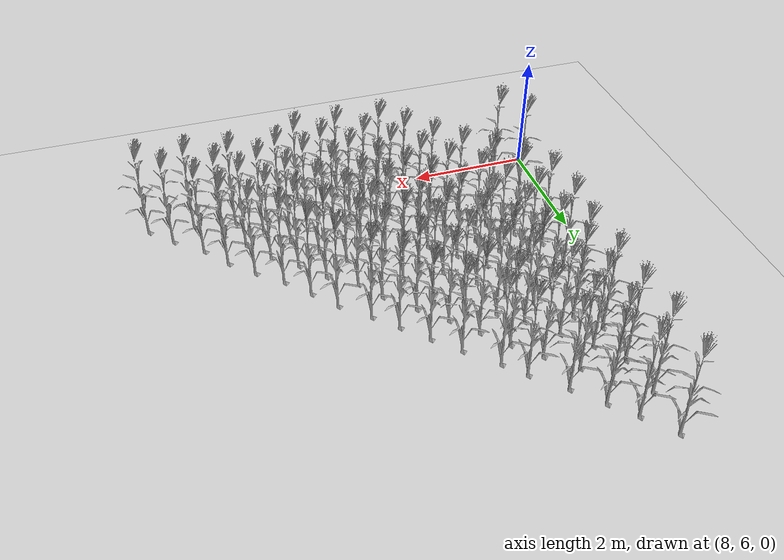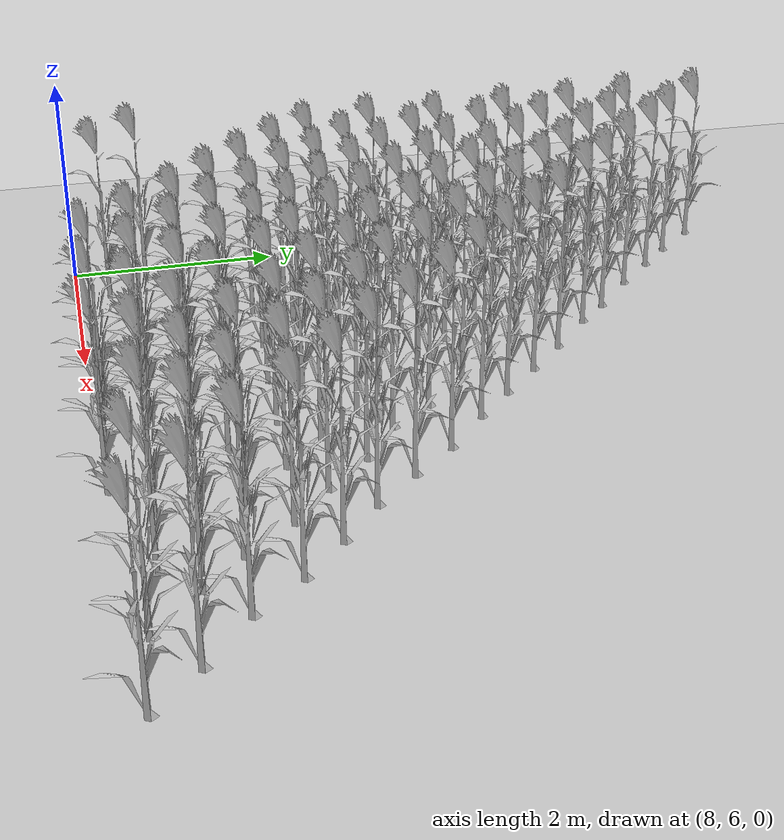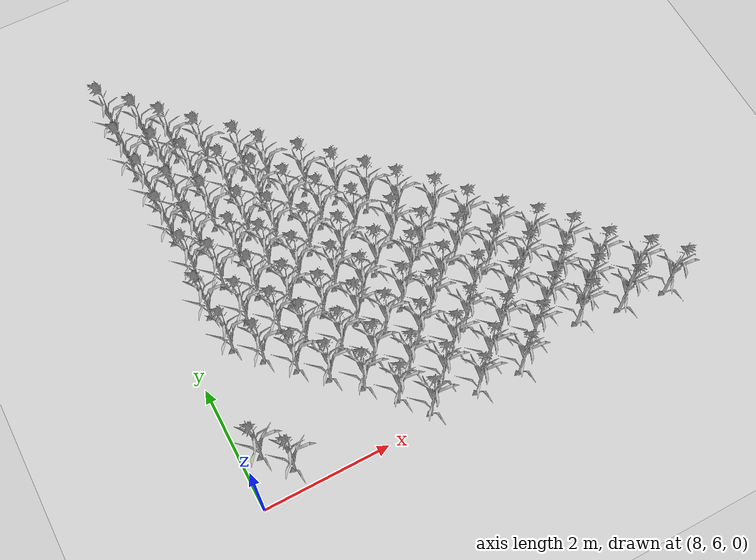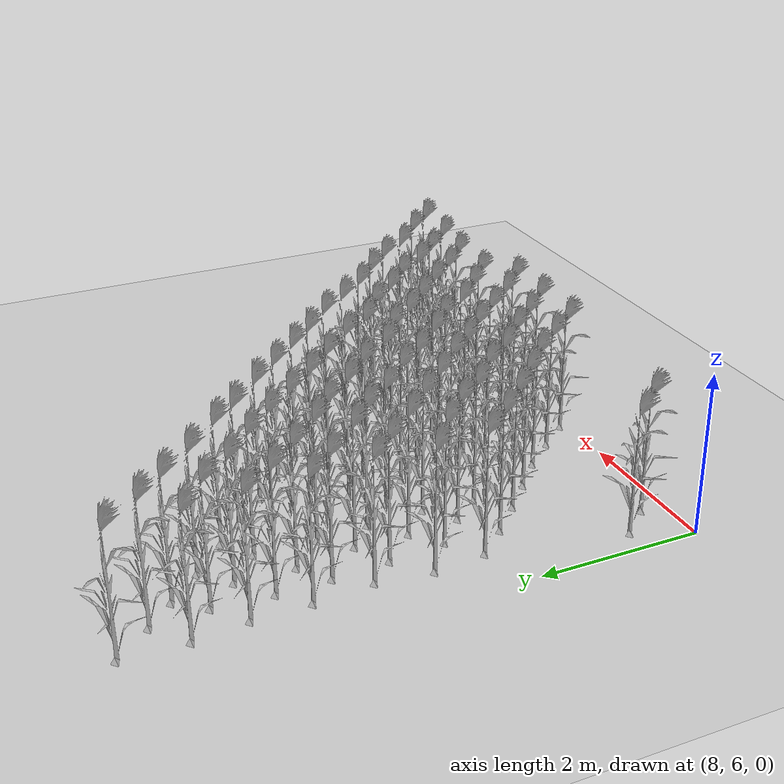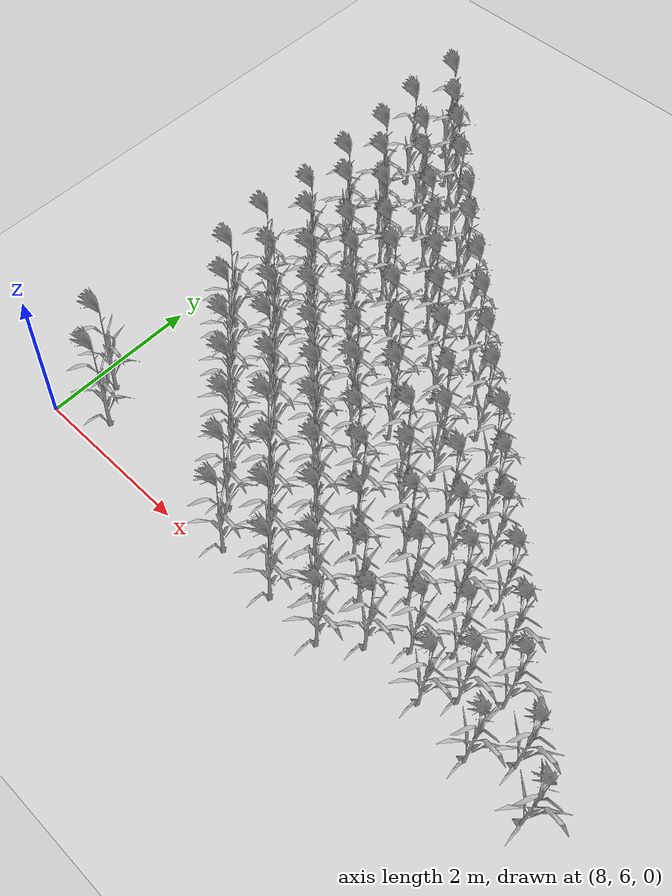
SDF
<sdf version="1.7">
 <world name="farmland_world">
  <model name="ground_plane">
   <static>1</static>
   <link name="link">
    <collision name="collision">
     <geometry><plane><normal>0 0 1</normal><size>40.0 40.0</size></plane></geometry>
     <surface><friction><ode><mu>100</mu><mu2>50</mu2></ode></friction></surface>
    </collision>
    <visual name="visual">
     <cast_shadows>0</cast_shadows>
     <geometry><plane><normal>0 0 1</normal><size>40.0 40.0</size></plane></geometry>
     <material>
      <script><uri>file://media/materials/scripts/gazebo.material</uri><name>Gazebo/Grey</name></script>
     </material>
    </visual>
   </link>
  </model>
  <model name="tree_3_576">
   <static>1</static>
   <link name="link">
    <collision name="collision">
     <geometry><mesh><uri>model://Corn_low_poly/corn.obj</uri><scale>1 1 1</scale></mesh></geometry>
     <surface><friction><ode><mu>100</mu><mu2>50</mu2></ode></friction></surface>
    </collision>
    <visual name="visual">
     <geometry><mesh><uri>model://Corn_low_poly/corn.obj</uri><scale>1 1 1</scale></mesh></geometry>
    </visual>
   </link>
   <pose>8.64935351501129 6.3411634427248895 0 0 0 0</pose>
  </model>
  <model name="tree_3_577">
   <static>1</static>
   <link name="link">
    <collision name="collision">
     <geometry><mesh><uri>model://Corn_low_poly/corn.obj</uri><scale>1 1 1</scale></mesh></geometry>
     <surface><friction><ode><mu>100</mu><mu2>50</mu2></ode></friction></surface>
    </collision>
    <visual name="visual">
     <geometry><mesh><uri>model://Corn_low_poly/corn.obj</uri><scale>1 1 1</scale></mesh></geometry>
    </visual>
   </link>
   <pose>8.30858917696627 6.719809609260198 0 0 0 0</pose>
  </model>
  <model name="tree_3_626">
   <static>1</static>
   <link name="link">
    <collision name="collision">
     <geometry><mesh><uri>model://Corn_low_poly/corn.obj</uri><scale>1 1 1</scale></mesh></geometry>
     <surface><friction><ode><mu>100</mu><mu2>50</mu2></ode></friction></surface>
    </collision>
    <visual name="visual">
     <geometry><mesh><uri>model://Corn_low_poly/corn.obj</uri><scale>1 1 1</scale></mesh></geometry>
    </visual>
   </link>
   <pose>10.777312497413048 6.151273396415218 0 0 0 0</pose>
  </model>
  <model name="tree_3_627">
   <static>1</static>
   <link name="link">
    <collision name="collision">
     <geometry><mesh><uri>model://Corn_low_poly/corn.obj</uri><scale>1 1 1</scale></mesh></geometry>
     <surface><friction><ode><mu>100</mu><mu2>50</mu2></ode></friction></surface>
    </collision>
    <visual name="visual">
     <geometry><mesh><uri>model://Corn_low_poly/corn.obj</uri><scale>1 1 1</scale></mesh></geometry>
    </visual>
   </link>
   <pose>10.451371682672354 6.546429637613833 0 0 0 0</pose>
  </model>
  <model name="tree_3_628">
   <static>1</static>
   <link name="link">
    <collision name="collision">
     <geometry><mesh><uri>model://Corn_low_poly/corn.obj</uri><scale>1 1 1</scale></mesh></geometry>
     <surface><friction><ode><mu>100</mu><mu2>50</mu2></ode></friction></surface>
    </collision>
    <visual name="visual">
     <geometry><mesh><uri>model://Corn_low_poly/corn.obj</uri><scale>1 1 1</scale></mesh></geometry>
    </visual>
   </link>
   <pose>10.093860684443943 6.951738333499843 0 0 0 0</pose>
  </model>
  <model name="tree_3_629">
   <static>1</static>
   <link name="link">
    <collision name="collision">
     <geometry><mesh><uri>model://Corn_low_poly/corn.obj</uri><scale>1 1 1</scale></mesh></geometry>
     <surface><friction><ode><mu>100</mu><mu2>50</mu2></ode></friction></surface>
    </collision>
    <visual name="visual">
     <geometry><mesh><uri>model://Corn_low_poly/corn.obj</uri><scale>1 1 1</scale></mesh></geometry>
    </visual>
   </link>
   <pose>9.712641433063979 7.302922568412573 0 0 0 0</pose>
  </model>
  <model name="tree_3_630">
   <static>1</static>
   <link name="link">
    <collision name="collision">
     <geometry><mesh><uri>model://Corn_low_poly/corn.obj</uri><scale>1 1 1</scale></mesh></geometry>
     <surface><friction><ode><mu>100</mu><mu2>50</mu2></ode></friction></surface>
    </collision>
    <visual name="visual">
     <geometry><mesh><uri>model://Corn_low_poly/corn.obj</uri><scale>1 1 1</scale></mesh></geometry>
    </visual>
   </link>
   <pose>9.346207723671728 7.650097128878043 0 0 0 0</pose>
  </model>
  <model name="tree_3_631">
   <static>1</static>
   <link name="link">
    <collision name="collision">
     <geometry><mesh><uri>model://Corn_low_poly/corn.obj</uri><scale>1 1 1</scale></mesh></geometry>
     <surface><friction><ode><mu>100</mu><mu2>50</mu2></ode></friction></surface>
    </collision>
    <visual name="visual">
     <geometry><mesh><uri>model://Corn_low_poly/corn.obj</uri><scale>1 1 1</scale></mesh></geometry>
    </visual>
   </link>
   <pose>8.97669276516336 8.01858814713158 0 0 0 0</pose>
  </model>
  <model name="tree_3_632">
   <static>1</static>
   <link name="link">
    <collision name="collision">
     <geometry><mesh><uri>model://Corn_low_poly/corn.obj</uri><scale>1 1 1</scale></mesh></geometry>
     <surface><friction><ode><mu>100</mu><mu2>50</mu2></ode></friction></surface>
    </collision>
    <visual name="visual">
     <geometry><mesh><uri>model://Corn_low_poly/corn.obj</uri><scale>1 1 1</scale></mesh></geometry>
    </visual>
   </link>
   <pose>8.639726052530673 8.391008435942188 0 0 0 0</pose>
  </model>
  <model name="tree_3_669">
   <static>1</static>
   <link name="link">
    <collision name="collision">
     <geometry><mesh><uri>model://Corn_low_poly/corn.obj</uri><scale>1 1 1</scale></mesh></geometry>
     <surface><friction><ode><mu>100</mu><mu2>50</mu2></ode></friction></surface>
    </collision>
    <visual name="visual">
     <geometry><mesh><uri>model://Corn_low_poly/corn.obj</uri><scale>1 1 1</scale></mesh></geometry>
    </visual>
   </link>
   <pose>11.531357919146503 6.11878398449251 0 0 0 0</pose>
  </model>
  <model name="tree_3_670">
   <static>1</static>
   <link name="link">
    <collision name="collision">
     <geometry><mesh><uri>model://Corn_low_poly/corn.obj</uri><scale>1 1 1</scale></mesh></geometry>
     <surface><friction><ode><mu>100</mu><mu2>50</mu2></ode></friction></surface>
    </collision>
    <visual name="visual">
     <geometry><mesh><uri>model://Corn_low_poly/corn.obj</uri><scale>1 1 1</scale></mesh></geometry>
    </visual>
   </link>
   <pose>11.149569247908355 6.500995445497624 0 0 0 0</pose>
  </model>
  <model name="tree_3_671">
   <static>1</static>
   <link name="link">
    <collision name="collision">
     <geometry><mesh><uri>model://Corn_low_poly/corn.obj</uri><scale>1 1 1</scale></mesh></geometry>
     <surface><friction><ode><mu>100</mu><mu2>50</mu2></ode></friction></surface>
    </collision>
    <visual name="visual">
     <geometry><mesh><uri>model://Corn_low_poly/corn.obj</uri><scale>1 1 1</scale></mesh></geometry>
    </visual>
   </link>
   <pose>10.798563994182116 6.872297393704606 0 0 0 0</pose>
  </model>
  <model name="tree_3_672">
   <static>1</static>
   <link name="link">
    <collision name="collision">
     <geometry><mesh><uri>model://Corn_low_poly/corn.obj</uri><scale>1 1 1</scale></mesh></geometry>
     <surface><friction><ode><mu>100</mu><mu2>50</mu2></ode></friction></surface>
    </collision>
    <visual name="visual">
     <geometry><mesh><uri>model://Corn_low_poly/corn.obj</uri><scale>1 1 1</scale></mesh></geometry>
    </visual>
   </link>
   <pose>10.405516856475273 7.238317220630221 0 0 0 0</pose>
  </model>
  <model name="tree_3_673">
   <static>1</static>
   <link name="link">
    <collision name="collision">
     <geometry><mesh><uri>model://Corn_low_poly/corn.obj</uri><scale>1 1 1</scale></mesh></geometry>
     <surface><friction><ode><mu>100</mu><mu2>50</mu2></ode></friction></surface>
    </collision>
    <visual name="visual">
     <geometry><mesh><uri>model://Corn_low_poly/corn.obj</uri><scale>1 1 1</scale></mesh></geometry>
    </visual>
   </link>
   <pose>10.079204731842175 7.635146201267444 0 0 0 0</pose>
  </model>
  <model name="tree_3_674">
   <static>1</static>
   <link name="link">
    <collision name="collision">
     <geometry><mesh><uri>model://Corn_low_poly/corn.obj</uri><scale>1 1 1</scale></mesh></geometry>
     <surface><friction><ode><mu>100</mu><mu2>50</mu2></ode></friction></surface>
    </collision>
    <visual name="visual">
     <geometry><mesh><uri>model://Corn_low_poly/corn.obj</uri><scale>1 1 1</scale></mesh></geometry>
    </visual>
   </link>
   <pose>9.667571216341711 7.98980224917773 0 0 0 0</pose>
  </model>
  <model name="tree_3_675">
   <static>1</static>
   <link name="link">
    <collision name="collision">
     <geometry><mesh><uri>model://Corn_low_poly/corn.obj</uri><scale>1 1 1</scale></mesh></geometry>
     <surface><friction><ode><mu>100</mu><mu2>50</mu2></ode></friction></surface>
    </collision>
    <visual name="visual">
     <geometry><mesh><uri>model://Corn_low_poly/corn.obj</uri><scale>1 1 1</scale></mesh></geometry>
    </visual>
   </link>
   <pose>9.3916508105687 8.343451964459202 0 0 0 0</pose>
  </model>
  <model name="tree_3_676">
   <static>1</static>
   <link name="link">
    <collision name="collision">
     <geometry><mesh><uri>model://Corn_low_poly/corn.obj</uri><scale>1 1 1</scale></mesh></geometry>
     <surface><friction><ode><mu>100</mu><mu2>50</mu2></ode></friction></surface>
    </collision>
    <visual name="visual">
     <geometry><mesh><uri>model://Corn_low_poly/corn.obj</uri><scale>1 1 1</scale></mesh></geometry>
    </visual>
   </link>
   <pose>9.022405621127744 8.693508944047071 0 0 0 0</pose>
  </model>
  <model name="tree_3_677">
   <static>1</static>
   <link name="link">
    <collision name="collision">
     <geometry><mesh><uri>model://Corn_low_poly/corn.obj</uri><scale>1 1 1</scale></mesh></geometry>
     <surface><friction><ode><mu>100</mu><mu2>50</mu2></ode></friction></surface>
    </collision>
    <visual name="visual">
     <geometry><mesh><uri>model://Corn_low_poly/corn.obj</uri><scale>1 1 1</scale></mesh></geometry>
    </visual>
   </link>
   <pose>8.569687681751743 9.035859053482325 0 0 0 0</pose>
  </model>
  <model name="tree_3_711">
   <static>1</static>
   <link name="link">
    <collision name="collision">
     <geometry><mesh><uri>model://Corn_low_poly/corn.obj</uri><scale>1 1 1</scale></mesh></geometry>
     <surface><friction><ode><mu>100</mu><mu2>50</mu2></ode></friction></surface>
    </collision>
    <visual name="visual">
     <geometry><mesh><uri>model://Corn_low_poly/corn.obj</uri><scale>1 1 1</scale></mesh></geometry>
    </visual>
   </link>
   <pose>12.232217793601766 6.0938751144287 0 0 0 0</pose>
  </model>
  <model name="tree_3_712">
   <static>1</static>
   <link name="link">
    <collision name="collision">
     <geometry><mesh><uri>model://Corn_low_poly/corn.obj</uri><scale>1 1 1</scale></mesh></geometry>
     <surface><friction><ode><mu>100</mu><mu2>50</mu2></ode></friction></surface>
    </collision>
    <visual name="visual">
     <geometry><mesh><uri>model://Corn_low_poly/corn.obj</uri><scale>1 1 1</scale></mesh></geometry>
    </visual>
   </link>
   <pose>11.864001395743752 6.433082951747832 0 0 0 0</pose>
  </model>
  <model name="tree_3_713">
   <static>1</static>
   <link name="link">
    <collision name="collision">
     <geometry><mesh><uri>model://Corn_low_poly/corn.obj</uri><scale>1 1 1</scale></mesh></geometry>
     <surface><friction><ode><mu>100</mu><mu2>50</mu2></ode></friction></surface>
    </collision>
    <visual name="visual">
     <geometry><mesh><uri>model://Corn_low_poly/corn.obj</uri><scale>1 1 1</scale></mesh></geometry>
    </visual>
   </link>
   <pose>11.495573526553908 6.833603310860739 0 0 0 0</pose>
  </model>
  <model name="tree_3_714">
   <static>1</static>
   <link name="link">
    <collision name="collision">
     <geometry><mesh><uri>model://Corn_low_poly/corn.obj</uri><scale>1 1 1</scale></mesh></geometry>
     <surface><friction><ode><mu>100</mu><mu2>50</mu2></ode></friction></surface>
    </collision>
    <visual name="visual">
     <geometry><mesh><uri>model://Corn_low_poly/corn.obj</uri><scale>1 1 1</scale></mesh></geometry>
    </visual>
   </link>
   <pose>11.137292094341124 7.216066445743867 0 0 0 0</pose>
  </model>
  <model name="tree_3_715">
   <static>1</static>
   <link name="link">
    <collision name="collision">
     <geometry><mesh><uri>model://Corn_low_poly/corn.obj</uri><scale>1 1 1</scale></mesh></geometry>
     <surface><friction><ode><mu>100</mu><mu2>50</mu2></ode></friction></surface>
    </collision>
    <visual name="visual">
     <geometry><mesh><uri>model://Corn_low_poly/corn.obj</uri><scale>1 1 1</scale></mesh></geometry>
    </visual>
   </link>
   <pose>10.77471236538079 7.566790496071668 0 0 0 0</pose>
  </model>
  <model name="tree_3_716">
   <static>1</static>
   <link name="link">
    <collision name="collision">
     <geometry><mesh><uri>model://Corn_low_poly/corn.obj</uri><scale>1 1 1</scale></mesh></geometry>
     <surface><friction><ode><mu>100</mu><mu2>50</mu2></ode></friction></surface>
    </collision>
    <visual name="visual">
     <geometry><mesh><uri>model://Corn_low_poly/corn.obj</uri><scale>1 1 1</scale></mesh></geometry>
    </visual>
   </link>
   <pose>10.471685381819386 7.901711357518229 0 0 0 0</pose>
  </model>
  <model name="tree_3_717">
   <static>1</static>
   <link name="link">
    <collision name="collision">
     <geometry><mesh><uri>model://Corn_low_poly/corn.obj</uri><scale>1 1 1</scale></mesh></geometry>
     <surface><friction><ode><mu>100</mu><mu2>50</mu2></ode></friction></surface>
    </collision>
    <visual name="visual">
     <geometry><mesh><uri>model://Corn_low_poly/corn.obj</uri><scale>1 1 1</scale></mesh></geometry>
    </visual>
   </link>
   <pose>10.092727066470006 8.257640670322473 0 0 0 0</pose>
  </model>
  <model name="tree_3_718">
   <static>1</static>
   <link name="link">
    <collision name="collision">
     <geometry><mesh><uri>model://Corn_low_poly/corn.obj</uri><scale>1 1 1</scale></mesh></geometry>
     <surface><friction><ode><mu>100</mu><mu2>50</mu2></ode></friction></surface>
    </collision>
    <visual name="visual">
     <geometry><mesh><uri>model://Corn_low_poly/corn.obj</uri><scale>1 1 1</scale></mesh></geometry>
    </visual>
   </link>
   <pose>9.72286980934282 8.628847013309263 0 0 0 0</pose>
  </model>
  <model name="tree_3_719">
   <static>1</static>
   <link name="link">
    <collision name="collision">
     <geometry><mesh><uri>model://Corn_low_poly/corn.obj</uri><scale>1 1 1</scale></mesh></geometry>
     <surface><friction><ode><mu>100</mu><mu2>50</mu2></ode></friction></surface>
    </collision>
    <visual name="visual">
     <geometry><mesh><uri>model://Corn_low_poly/corn.obj</uri><scale>1 1 1</scale></mesh></geometry>
    </visual>
   </link>
   <pose>9.345481412307185 8.98576558102844 0 0 0 0</pose>
  </model>
  <model name="tree_3_720">
   <static>1</static>
   <link name="link">
    <collision name="collision">
     <geometry><mesh><uri>model://Corn_low_poly/corn.obj</uri><scale>1 1 1</scale></mesh></geometry>
     <surface><friction><ode><mu>100</mu><mu2>50</mu2></ode></friction></surface>
    </collision>
    <visual name="visual">
     <geometry><mesh><uri>model://Corn_low_poly/corn.obj</uri><scale>1 1 1</scale></mesh></geometry>
    </visual>
   </link>
   <pose>8.953700819799026 9.396545710614987 0 0 0 0</pose>
  </model>
  <model name="tree_3_721">
   <static>1</static>
   <link name="link">
    <collision name="collision">
     <geometry><mesh><uri>model://Corn_low_poly/corn.obj</uri><scale>1 1 1</scale></mesh></geometry>
     <surface><friction><ode><mu>100</mu><mu2>50</mu2></ode></friction></surface>
    </collision>
    <visual name="visual">
     <geometry><mesh><uri>model://Corn_low_poly/corn.obj</uri><scale>1 1 1</scale></mesh></geometry>
    </visual>
   </link>
   <pose>8.65388605759905 9.705794200934703 0 0 0 0</pose>
  </model>
  <model name="tree_3_753">
   <static>1</static>
   <link name="link">
    <collision name="collision">
     <geometry><mesh><uri>model://Corn_low_poly/corn.obj</uri><scale>1 1 1</scale></mesh></geometry>
     <surface><friction><ode><mu>100</mu><mu2>50</mu2></ode></friction></surface>
    </collision>
    <visual name="visual">
     <geometry><mesh><uri>model://Corn_low_poly/corn.obj</uri><scale>1 1 1</scale></mesh></geometry>
    </visual>
   </link>
   <pose>12.613792174995002 6.412581238912322 0 0 0 0</pose>
  </model>
  <model name="tree_3_754">
   <static>1</static>
   <link name="link">
    <collision name="collision">
     <geometry><mesh><uri>model://Corn_low_poly/corn.obj</uri><scale>1 1 1</scale></mesh></geometry>
     <surface><friction><ode><mu>100</mu><mu2>50</mu2></ode></friction></surface>
    </collision>
    <visual name="visual">
     <geometry><mesh><uri>model://Corn_low_poly/corn.obj</uri><scale>1 1 1</scale></mesh></geometry>
    </visual>
   </link>
   <pose>12.230980644655714 6.732122366942741 0 0 0 0</pose>
  </model>
  <model name="tree_3_755">
   <static>1</static>
   <link name="link">
    <collision name="collision">
     <geometry><mesh><uri>model://Corn_low_poly/corn.obj</uri><scale>1 1 1</scale></mesh></geometry>
     <surface><friction><ode><mu>100</mu><mu2>50</mu2></ode></friction></surface>
    </collision>
    <visual name="visual">
     <geometry><mesh><uri>model://Corn_low_poly/corn.obj</uri><scale>1 1 1</scale></mesh></geometry>
    </visual>
   </link>
   <pose>11.845102816352751 7.073893054428224 0 0 0 0</pose>
  </model>
  <model name="tree_3_756">
   <static>1</static>
   <link name="link">
    <collision name="collision">
     <geometry><mesh><uri>model://Corn_low_poly/corn.obj</uri><scale>1 1 1</scale></mesh></geometry>
     <surface><friction><ode><mu>100</mu><mu2>50</mu2></ode></friction></surface>
    </collision>
    <visual name="visual">
     <geometry><mesh><uri>model://Corn_low_poly/corn.obj</uri><scale>1 1 1</scale></mesh></geometry>
    </visual>
   </link>
   <pose>11.504664264285628 7.522527851622796 0 0 0 0</pose>
  </model>
  <model name="tree_3_757">
   <static>1</static>
   <link name="link">
    <collision name="collision">
     <geometry><mesh><uri>model://Corn_low_poly/corn.obj</uri><scale>1 1 1</scale></mesh></geometry>
     <surface><friction><ode><mu>100</mu><mu2>50</mu2></ode></friction></surface>
    </collision>
    <visual name="visual">
     <geometry><mesh><uri>model://Corn_low_poly/corn.obj</uri><scale>1 1 1</scale></mesh></geometry>
    </visual>
   </link>
   <pose>11.169811983408136 7.8049888022147025 0 0 0 0</pose>
  </model>
  <model name="tree_3_758">
   <static>1</static>
   <link name="link">
    <collision name="collision">
     <geometry><mesh><uri>model://Corn_low_poly/corn.obj</uri><scale>1 1 1</scale></mesh></geometry>
     <surface><friction><ode><mu>100</mu><mu2>50</mu2></ode></friction></surface>
    </collision>
    <visual name="visual">
     <geometry><mesh><uri>model://Corn_low_poly/corn.obj</uri><scale>1 1 1</scale></mesh></geometry>
    </visual>
   </link>
   <pose>10.731149098879134 8.22523884899606 0 0 0 0</pose>
  </model>
  <model name="tree_3_759">
   <static>1</static>
   <link name="link">
    <collision name="collision">
     <geometry><mesh><uri>model://Corn_low_poly/corn.obj</uri><scale>1 1 1</scale></mesh></geometry>
     <surface><friction><ode><mu>100</mu><mu2>50</mu2></ode></friction></surface>
    </collision>
    <visual name="visual">
     <geometry><mesh><uri>model://Corn_low_poly/corn.obj</uri><scale>1 1 1</scale></mesh></geometry>
    </visual>
   </link>
   <pose>10.446559833352648 8.570365655869594 0 0 0 0</pose>
  </model>
  <model name="tree_3_760">
   <static>1</static>
   <link name="link">
    <collision name="collision">
     <geometry><mesh><uri>model://Corn_low_poly/corn.obj</uri><scale>1 1 1</scale></mesh></geometry>
     <surface><friction><ode><mu>100</mu><mu2>50</mu2></ode></friction></surface>
    </collision>
    <visual name="visual">
     <geometry><mesh><uri>model://Corn_low_poly/corn.obj</uri><scale>1 1 1</scale></mesh></geometry>
    </visual>
   </link>
   <pose>10.02923279683049 8.955274282818243 0 0 0 0</pose>
  </model>
  <model name="tree_3_761">
   <static>1</static>
   <link name="link">
    <collision name="collision">
     <geometry><mesh><uri>model://Corn_low_poly/corn.obj</uri><scale>1 1 1</scale></mesh></geometry>
     <surface><friction><ode><mu>100</mu><mu2>50</mu2></ode></friction></surface>
    </collision>
    <visual name="visual">
     <geometry><mesh><uri>model://Corn_low_poly/corn.obj</uri><scale>1 1 1</scale></mesh></geometry>
    </visual>
   </link>
   <pose>9.706976673363856 9.335738649914466 0 0 0 0</pose>
  </model>
  <model name="tree_3_762">
   <static>1</static>
   <link name="link">
    <collision name="collision">
     <geometry><mesh><uri>model://Corn_low_poly/corn.obj</uri><scale>1 1 1</scale></mesh></geometry>
     <surface><friction><ode><mu>100</mu><mu2>50</mu2></ode></friction></surface>
    </collision>
    <visual name="visual">
     <geometry><mesh><uri>model://Corn_low_poly/corn.obj</uri><scale>1 1 1</scale></mesh></geometry>
    </visual>
   </link>
   <pose>9.36401951057691 9.633996611925426 0 0 0 0</pose>
  </model>
  <model name="tree_3_763">
   <static>1</static>
   <link name="link">
    <collision name="collision">
     <geometry><mesh><uri>model://Corn_low_poly/corn.obj</uri><scale>1 1 1</scale></mesh></geometry>
     <surface><friction><ode><mu>100</mu><mu2>50</mu2></ode></friction></surface>
    </collision>
    <visual name="visual">
     <geometry><mesh><uri>model://Corn_low_poly/corn.obj</uri><scale>1 1 1</scale></mesh></geometry>
    </visual>
   </link>
   <pose>8.909913535243192 10.087853444492826 0 0 0 0</pose>
  </model>
  <model name="tree_3_764">
   <static>1</static>
   <link name="link">
    <collision name="collision">
     <geometry><mesh><uri>model://Corn_low_poly/corn.obj</uri><scale>1 1 1</scale></mesh></geometry>
     <surface><friction><ode><mu>100</mu><mu2>50</mu2></ode></friction></surface>
    </collision>
    <visual name="visual">
     <geometry><mesh><uri>model://Corn_low_poly/corn.obj</uri><scale>1 1 1</scale></mesh></geometry>
    </visual>
   </link>
   <pose>8.59543639839559 10.428501769387871 0 0 0 0</pose>
  </model>
  <model name="tree_3_793">
   <static>1</static>
   <link name="link">
    <collision name="collision">
     <geometry><mesh><uri>model://Corn_low_poly/corn.obj</uri><scale>1 1 1</scale></mesh></geometry>
     <surface><friction><ode><mu>100</mu><mu2>50</mu2></ode></friction></surface>
    </collision>
    <visual name="visual">
     <geometry><mesh><uri>model://Corn_low_poly/corn.obj</uri><scale>1 1 1</scale></mesh></geometry>
    </visual>
   </link>
   <pose>13.380329126714297 6.362936821080895 0 0 0 0</pose>
  </model>
  <model name="tree_3_794">
   <static>1</static>
   <link name="link">
    <collision name="collision">
     <geometry><mesh><uri>model://Corn_low_poly/corn.obj</uri><scale>1 1 1</scale></mesh></geometry>
     <surface><friction><ode><mu>100</mu><mu2>50</mu2></ode></friction></surface>
    </collision>
    <visual name="visual">
     <geometry><mesh><uri>model://Corn_low_poly/corn.obj</uri><scale>1 1 1</scale></mesh></geometry>
    </visual>
   </link>
   <pose>12.97394252794531 6.712117958913813 0 0 0 0</pose>
  </model>
  <model name="tree_3_795">
   <static>1</static>
   <link name="link">
    <collision name="collision">
     <geometry><mesh><uri>model://Corn_low_poly/corn.obj</uri><scale>1 1 1</scale></mesh></geometry>
     <surface><friction><ode><mu>100</mu><mu2>50</mu2></ode></friction></surface>
    </collision>
    <visual name="visual">
     <geometry><mesh><uri>model://Corn_low_poly/corn.obj</uri><scale>1 1 1</scale></mesh></geometry>
    </visual>
   </link>
   <pose>12.598838123828623 7.1077138365842005 0 0 0 0</pose>
  </model>
  <model name="tree_3_796">
   <static>1</static>
   <link name="link">
    <collision name="collision">
     <geometry><mesh><uri>model://Corn_low_poly/corn.obj</uri><scale>1 1 1</scale></mesh></geometry>
     <surface><friction><ode><mu>100</mu><mu2>50</mu2></ode></friction></surface>
    </collision>
    <visual name="visual">
     <geometry><mesh><uri>model://Corn_low_poly/corn.obj</uri><scale>1 1 1</scale></mesh></geometry>
    </visual>
   </link>
   <pose>12.20630396692625 7.480066609593542 0 0 0 0</pose>
  </model>
  <model name="tree_3_797">
   <static>1</static>
   <link name="link">
    <collision name="collision">
     <geometry><mesh><uri>model://Corn_low_poly/corn.obj</uri><scale>1 1 1</scale></mesh></geometry>
     <surface><friction><ode><mu>100</mu><mu2>50</mu2></ode></friction></surface>
    </collision>
    <visual name="visual">
     <geometry><mesh><uri>model://Corn_low_poly/corn.obj</uri><scale>1 1 1</scale></mesh></geometry>
    </visual>
   </link>
   <pose>11.837050580727254 7.830057476866345 0 0 0 0</pose>
  </model>
  <model name="tree_3_798">
   <static>1</static>
   <link name="link">
    <collision name="collision">
     <geometry><mesh><uri>model://Corn_low_poly/corn.obj</uri><scale>1 1 1</scale></mesh></geometry>
     <surface><friction><ode><mu>100</mu><mu2>50</mu2></ode></friction></surface>
    </collision>
    <visual name="visual">
     <geometry><mesh><uri>model://Corn_low_poly/corn.obj</uri><scale>1 1 1</scale></mesh></geometry>
    </visual>
   </link>
   <pose>11.526074530400896 8.20034435263524 0 0 0 0</pose>
  </model>
  <model name="tree_3_799">
   <static>1</static>
   <link name="link">
    <collision name="collision">
     <geometry><mesh><uri>model://Corn_low_poly/corn.obj</uri><scale>1 1 1</scale></mesh></geometry>
     <surface><friction><ode><mu>100</mu><mu2>50</mu2></ode></friction></surface>
    </collision>
    <visual name="visual">
     <geometry><mesh><uri>model://Corn_low_poly/corn.obj</uri><scale>1 1 1</scale></mesh></geometry>
    </visual>
   </link>
   <pose>11.094363754309796 8.493514094764471 0 0 0 0</pose>
  </model>
  <model name="tree_3_800">
   <static>1</static>
   <link name="link">
    <collision name="collision">
     <geometry><mesh><uri>model://Corn_low_poly/corn.obj</uri><scale>1 1 1</scale></mesh></geometry>
     <surface><friction><ode><mu>100</mu><mu2>50</mu2></ode></friction></surface>
    </collision>
    <visual name="visual">
     <geometry><mesh><uri>model://Corn_low_poly/corn.obj</uri><scale>1 1 1</scale></mesh></geometry>
    </visual>
   </link>
   <pose>10.748067124300015 8.930594702121216 0 0 0 0</pose>
  </model>
  <model name="tree_3_801">
   <static>1</static>
   <link name="link">
    <collision name="collision">
     <geometry><mesh><uri>model://Corn_low_poly/corn.obj</uri><scale>1 1 1</scale></mesh></geometry>
     <surface><friction><ode><mu>100</mu><mu2>50</mu2></ode></friction></surface>
    </collision>
    <visual name="visual">
     <geometry><mesh><uri>model://Corn_low_poly/corn.obj</uri><scale>1 1 1</scale></mesh></geometry>
    </visual>
   </link>
   <pose>10.377965596833585 9.279726696212945 0 0 0 0</pose>
  </model>
  <model name="tree_3_802">
   <static>1</static>
   <link name="link">
    <collision name="collision">
     <geometry><mesh><uri>model://Corn_low_poly/corn.obj</uri><scale>1 1 1</scale></mesh></geometry>
     <surface><friction><ode><mu>100</mu><mu2>50</mu2></ode></friction></surface>
    </collision>
    <visual name="visual">
     <geometry><mesh><uri>model://Corn_low_poly/corn.obj</uri><scale>1 1 1</scale></mesh></geometry>
    </visual>
   </link>
   <pose>9.999069051551947 9.683099846583923 0 0 0 0</pose>
  </model>
  <model name="tree_3_803">
   <static>1</static>
   <link name="link">
    <collision name="collision">
     <geometry><mesh><uri>model://Corn_low_poly/corn.obj</uri><scale>1 1 1</scale></mesh></geometry>
     <surface><friction><ode><mu>100</mu><mu2>50</mu2></ode></friction></surface>
    </collision>
    <visual name="visual">
     <geometry><mesh><uri>model://Corn_low_poly/corn.obj</uri><scale>1 1 1</scale></mesh></geometry>
    </visual>
   </link>
   <pose>9.65823282099976 9.964427300132327 0 0 0 0</pose>
  </model>
  <model name="tree_3_804">
   <static>1</static>
   <link name="link">
    <collision name="collision">
     <geometry><mesh><uri>model://Corn_low_poly/corn.obj</uri><scale>1 1 1</scale></mesh></geometry>
     <surface><friction><ode><mu>100</mu><mu2>50</mu2></ode></friction></surface>
    </collision>
    <visual name="visual">
     <geometry><mesh><uri>model://Corn_low_poly/corn.obj</uri><scale>1 1 1</scale></mesh></geometry>
    </visual>
   </link>
   <pose>9.262049465192401 10.358371907920287 0 0 0 0</pose>
  </model>
  <model name="tree_3_805">
   <static>1</static>
   <link name="link">
    <collision name="collision">
     <geometry><mesh><uri>model://Corn_low_poly/corn.obj</uri><scale>1 1 1</scale></mesh></geometry>
     <surface><friction><ode><mu>100</mu><mu2>50</mu2></ode></friction></surface>
    </collision>
    <visual name="visual">
     <geometry><mesh><uri>model://Corn_low_poly/corn.obj</uri><scale>1 1 1</scale></mesh></geometry>
    </visual>
   </link>
   <pose>8.903991671256513 10.727103750884833 0 0 0 0</pose>
  </model>
  <model name="tree_3_806">
   <static>1</static>
   <link name="link">
    <collision name="collision">
     <geometry><mesh><uri>model://Corn_low_poly/corn.obj</uri><scale>1 1 1</scale></mesh></geometry>
     <surface><friction><ode><mu>100</mu><mu2>50</mu2></ode></friction></surface>
    </collision>
    <visual name="visual">
     <geometry><mesh><uri>model://Corn_low_poly/corn.obj</uri><scale>1 1 1</scale></mesh></geometry>
    </visual>
   </link>
   <pose>8.590038271484985 11.115531047375901 0 0 0 0</pose>
  </model>
  <model name="tree_3_832">
   <static>1</static>
   <link name="link">
    <collision name="collision">
     <geometry><mesh><uri>model://Corn_low_poly/corn.obj</uri><scale>1 1 1</scale></mesh></geometry>
     <surface><friction><ode><mu>100</mu><mu2>50</mu2></ode></friction></surface>
    </collision>
    <visual name="visual">
     <geometry><mesh><uri>model://Corn_low_poly/corn.obj</uri><scale>1 1 1</scale></mesh></geometry>
    </visual>
   </link>
   <pose>14.06897571871161 6.250504075116258 0 0 0 0</pose>
  </model>
  <model name="tree_3_833">
   <static>1</static>
   <link name="link">
    <collision name="collision">
     <geometry><mesh><uri>model://Corn_low_poly/corn.obj</uri><scale>1 1 1</scale></mesh></geometry>
     <surface><friction><ode><mu>100</mu><mu2>50</mu2></ode></friction></surface>
    </collision>
    <visual name="visual">
     <geometry><mesh><uri>model://Corn_low_poly/corn.obj</uri><scale>1 1 1</scale></mesh></geometry>
    </visual>
   </link>
   <pose>13.649277716042945 6.649421617863638 0 0 0 0</pose>
  </model>
  <model name="tree_3_834">
   <static>1</static>
   <link name="link">
    <collision name="collision">
     <geometry><mesh><uri>model://Corn_low_poly/corn.obj</uri><scale>1 1 1</scale></mesh></geometry>
     <surface><friction><ode><mu>100</mu><mu2>50</mu2></ode></friction></surface>
    </collision>
    <visual name="visual">
     <geometry><mesh><uri>model://Corn_low_poly/corn.obj</uri><scale>1 1 1</scale></mesh></geometry>
    </visual>
   </link>
   <pose>13.321330329452044 6.984821325993712 0 0 0 0</pose>
  </model>
  <model name="tree_3_835">
   <static>1</static>
   <link name="link">
    <collision name="collision">
     <geometry><mesh><uri>model://Corn_low_poly/corn.obj</uri><scale>1 1 1</scale></mesh></geometry>
     <surface><friction><ode><mu>100</mu><mu2>50</mu2></ode></friction></surface>
    </collision>
    <visual name="visual">
     <geometry><mesh><uri>model://Corn_low_poly/corn.obj</uri><scale>1 1 1</scale></mesh></geometry>
    </visual>
   </link>
   <pose>12.992170999442582 7.404875118502971 0 0 0 0</pose>
  </model>
  <model name="tree_3_836">
   <static>1</static>
   <link name="link">
    <collision name="collision">
     <geometry><mesh><uri>model://Corn_low_poly/corn.obj</uri><scale>1 1 1</scale></mesh></geometry>
     <surface><friction><ode><mu>100</mu><mu2>50</mu2></ode></friction></surface>
    </collision>
    <visual name="visual">
     <geometry><mesh><uri>model://Corn_low_poly/corn.obj</uri><scale>1 1 1</scale></mesh></geometry>
    </visual>
   </link>
   <pose>12.609503020334307 7.7390198770195555 0 0 0 0</pose>
  </model>
  <model name="tree_3_837">
   <static>1</static>
   <link name="link">
    <collision name="collision">
     <geometry><mesh><uri>model://Corn_low_poly/corn.obj</uri><scale>1 1 1</scale></mesh></geometry>
     <surface><friction><ode><mu>100</mu><mu2>50</mu2></ode></friction></surface>
    </collision>
    <visual name="visual">
     <geometry><mesh><uri>model://Corn_low_poly/corn.obj</uri><scale>1 1 1</scale></mesh></geometry>
    </visual>
   </link>
   <pose>12.248497319465214 8.123619198988532 0 0 0 0</pose>
  </model>
  <model name="tree_3_838">
   <static>1</static>
   <link name="link">
    <collision name="collision">
     <geometry><mesh><uri>model://Corn_low_poly/corn.obj</uri><scale>1 1 1</scale></mesh></geometry>
     <surface><friction><ode><mu>100</mu><mu2>50</mu2></ode></friction></surface>
    </collision>
    <visual name="visual">
     <geometry><mesh><uri>model://Corn_low_poly/corn.obj</uri><scale>1 1 1</scale></mesh></geometry>
    </visual>
   </link>
   <pose>11.817449566556856 8.437641872211938 0 0 0 0</pose>
  </model>
  <model name="tree_3_839">
   <static>1</static>
   <link name="link">
    <collision name="collision">
     <geometry><mesh><uri>model://Corn_low_poly/corn.obj</uri><scale>1 1 1</scale></mesh></geometry>
     <surface><friction><ode><mu>100</mu><mu2>50</mu2></ode></friction></surface>
    </collision>
    <visual name="visual">
     <geometry><mesh><uri>model://Corn_low_poly/corn.obj</uri><scale>1 1 1</scale></mesh></geometry>
    </visual>
   </link>
   <pose>11.538428232343614 8.82024149098214 0 0 0 0</pose>
  </model>
  <model name="tree_3_840">
   <static>1</static>
   <link name="link">
    <collision name="collision">
     <geometry><mesh><uri>model://Corn_low_poly/corn.obj</uri><scale>1 1 1</scale></mesh></geometry>
     <surface><friction><ode><mu>100</mu><mu2>50</mu2></ode></friction></surface>
    </collision>
    <visual name="visual">
     <geometry><mesh><uri>model://Corn_low_poly/corn.obj</uri><scale>1 1 1</scale></mesh></geometry>
    </visual>
   </link>
   <pose>11.121640672271285 9.235847357972784 0 0 0 0</pose>
  </model>
  <model name="tree_3_841">
   <static>1</static>
   <link name="link">
    <collision name="collision">
     <geometry><mesh><uri>model://Corn_low_poly/corn.obj</uri><scale>1 1 1</scale></mesh></geometry>
     <surface><friction><ode><mu>100</mu><mu2>50</mu2></ode></friction></surface>
    </collision>
    <visual name="visual">
     <geometry><mesh><uri>model://Corn_low_poly/corn.obj</uri><scale>1 1 1</scale></mesh></geometry>
    </visual>
   </link>
   <pose>10.736251149158612 9.606413069315046 0 0 0 0</pose>
  </model>
  <model name="tree_3_842">
   <static>1</static>
   <link name="link">
    <collision name="collision">
     <geometry><mesh><uri>model://Corn_low_poly/corn.obj</uri><scale>1 1 1</scale></mesh></geometry>
     <surface><friction><ode><mu>100</mu><mu2>50</mu2></ode></friction></surface>
    </collision>
    <visual name="visual">
     <geometry><mesh><uri>model://Corn_low_poly/corn.obj</uri><scale>1 1 1</scale></mesh></geometry>
    </visual>
   </link>
   <pose>10.390858859993118 9.978886066558239 0 0 0 0</pose>
  </model>
  <model name="tree_3_843">
   <static>1</static>
   <link name="link">
    <collision name="collision">
     <geometry><mesh><uri>model://Corn_low_poly/corn.obj</uri><scale>1 1 1</scale></mesh></geometry>
     <surface><friction><ode><mu>100</mu><mu2>50</mu2></ode></friction></surface>
    </collision>
    <visual name="visual">
     <geometry><mesh><uri>model://Corn_low_poly/corn.obj</uri><scale>1 1 1</scale></mesh></geometry>
    </visual>
   </link>
   <pose>10.056153832401368 10.344581892632268 0 0 0 0</pose>
  </model>
  <model name="tree_3_844">
   <static>1</static>
   <link name="link">
    <collision name="collision">
     <geometry><mesh><uri>model://Corn_low_poly/corn.obj</uri><scale>1 1 1</scale></mesh></geometry>
     <surface><friction><ode><mu>100</mu><mu2>50</mu2></ode></friction></surface>
    </collision>
    <visual name="visual">
     <geometry><mesh><uri>model://Corn_low_poly/corn.obj</uri><scale>1 1 1</scale></mesh></geometry>
    </visual>
   </link>
   <pose>9.689939649715683 10.699956346525685 0 0 0 0</pose>
  </model>
  <model name="tree_3_845">
   <static>1</static>
   <link name="link">
    <collision name="collision">
     <geometry><mesh><uri>model://Corn_low_poly/corn.obj</uri><scale>1 1 1</scale></mesh></geometry>
     <surface><friction><ode><mu>100</mu><mu2>50</mu2></ode></friction></surface>
    </collision>
    <visual name="visual">
     <geometry><mesh><uri>model://Corn_low_poly/corn.obj</uri><scale>1 1 1</scale></mesh></geometry>
    </visual>
   </link>
   <pose>9.283564534833353 11.057161975466713 0 0 0 0</pose>
  </model>
  <model name="tree_3_846">
   <static>1</static>
   <link name="link">
    <collision name="collision">
     <geometry><mesh><uri>model://Corn_low_poly/corn.obj</uri><scale>1 1 1</scale></mesh></geometry>
     <surface><friction><ode><mu>100</mu><mu2>50</mu2></ode></friction></surface>
    </collision>
    <visual name="visual">
     <geometry><mesh><uri>model://Corn_low_poly/corn.obj</uri><scale>1 1 1</scale></mesh></geometry>
    </visual>
   </link>
   <pose>8.962648931730213 11.422341061792753 0 0 0 0</pose>
  </model>
  <model name="tree_3_847">
   <static>1</static>
   <link name="link">
    <collision name="collision">
     <geometry><mesh><uri>model://Corn_low_poly/corn.obj</uri><scale>1 1 1</scale></mesh></geometry>
     <surface><friction><ode><mu>100</mu><mu2>50</mu2></ode></friction></surface>
    </collision>
    <visual name="visual">
     <geometry><mesh><uri>model://Corn_low_poly/corn.obj</uri><scale>1 1 1</scale></mesh></geometry>
    </visual>
   </link>
   <pose>8.51680682624593 11.758109054918977 0 0 0 0</pose>
  </model>
  <model name="tree_3_870">
   <static>1</static>
   <link name="link">
    <collision name="collision">
     <geometry><mesh><uri>model://Corn_low_poly/corn.obj</uri><scale>1 1 1</scale></mesh></geometry>
     <surface><friction><ode><mu>100</mu><mu2>50</mu2></ode></friction></surface>
    </collision>
    <visual name="visual">
     <geometry><mesh><uri>model://Corn_low_poly/corn.obj</uri><scale>1 1 1</scale></mesh></geometry>
    </visual>
   </link>
   <pose>14.818012381912245 6.1722984221522985 0 0 0 0</pose>
  </model>
  <model name="tree_3_871">
   <static>1</static>
   <link name="link">
    <collision name="collision">
     <geometry><mesh><uri>model://Corn_low_poly/corn.obj</uri><scale>1 1 1</scale></mesh></geometry>
     <surface><friction><ode><mu>100</mu><mu2>50</mu2></ode></friction></surface>
    </collision>
    <visual name="visual">
     <geometry><mesh><uri>model://Corn_low_poly/corn.obj</uri><scale>1 1 1</scale></mesh></geometry>
    </visual>
   </link>
   <pose>14.456115586294485 6.5456482816628725 0 0 0 0</pose>
  </model>
  <model name="tree_3_872">
   <static>1</static>
   <link name="link">
    <collision name="collision">
     <geometry><mesh><uri>model://Corn_low_poly/corn.obj</uri><scale>1 1 1</scale></mesh></geometry>
     <surface><friction><ode><mu>100</mu><mu2>50</mu2></ode></friction></surface>
    </collision>
    <visual name="visual">
     <geometry><mesh><uri>model://Corn_low_poly/corn.obj</uri><scale>1 1 1</scale></mesh></geometry>
    </visual>
   </link>
   <pose>14.007382050216677 6.93476945494848 0 0 0 0</pose>
  </model>
  <model name="tree_3_873">
   <static>1</static>
   <link name="link">
    <collision name="collision">
     <geometry><mesh><uri>model://Corn_low_poly/corn.obj</uri><scale>1 1 1</scale></mesh></geometry>
     <surface><friction><ode><mu>100</mu><mu2>50</mu2></ode></friction></surface>
    </collision>
    <visual name="visual">
     <geometry><mesh><uri>model://Corn_low_poly/corn.obj</uri><scale>1 1 1</scale></mesh></geometry>
    </visual>
   </link>
   <pose>13.682634701391112 7.351881140017519 0 0 0 0</pose>
  </model>
  <model name="tree_3_874">
   <static>1</static>
   <link name="link">
    <collision name="collision">
     <geometry><mesh><uri>model://Corn_low_poly/corn.obj</uri><scale>1 1 1</scale></mesh></geometry>
     <surface><friction><ode><mu>100</mu><mu2>50</mu2></ode></friction></surface>
    </collision>
    <visual name="visual">
     <geometry><mesh><uri>model://Corn_low_poly/corn.obj</uri><scale>1 1 1</scale></mesh></geometry>
    </visual>
   </link>
   <pose>13.310512858507709 7.709380683158945 0 0 0 0</pose>
  </model>
  <model name="tree_3_875">
   <static>1</static>
   <link name="link">
    <collision name="collision">
     <geometry><mesh><uri>model://Corn_low_poly/corn.obj</uri><scale>1 1 1</scale></mesh></geometry>
     <surface><friction><ode><mu>100</mu><mu2>50</mu2></ode></friction></surface>
    </collision>
    <visual name="visual">
     <geometry><mesh><uri>model://Corn_low_poly/corn.obj</uri><scale>1 1 1</scale></mesh></geometry>
    </visual>
   </link>
   <pose>12.91758656304989 8.051635554158382 0 0 0 0</pose>
  </model>
  <model name="tree_3_876">
   <static>1</static>
   <link name="link">
    <collision name="collision">
     <geometry><mesh><uri>model://Corn_low_poly/corn.obj</uri><scale>1 1 1</scale></mesh></geometry>
     <surface><friction><ode><mu>100</mu><mu2>50</mu2></ode></friction></surface>
    </collision>
    <visual name="visual">
     <geometry><mesh><uri>model://Corn_low_poly/corn.obj</uri><scale>1 1 1</scale></mesh></geometry>
    </visual>
   </link>
   <pose>12.574982448829326 8.433297743395642 0 0 0 0</pose>
  </model>
  <model name="tree_3_877">
   <static>1</static>
   <link name="link">
    <collision name="collision">
     <geometry><mesh><uri>model://Corn_low_poly/corn.obj</uri><scale>1 1 1</scale></mesh></geometry>
     <surface><friction><ode><mu>100</mu><mu2>50</mu2></ode></friction></surface>
    </collision>
    <visual name="visual">
     <geometry><mesh><uri>model://Corn_low_poly/corn.obj</uri><scale>1 1 1</scale></mesh></geometry>
    </visual>
   </link>
   <pose>12.249679738925156 8.817446869712548 0 0 0 0</pose>
  </model>
  <model name="tree_3_878">
   <static>1</static>
   <link name="link">
    <collision name="collision">
     <geometry><mesh><uri>model://Corn_low_poly/corn.obj</uri><scale>1 1 1</scale></mesh></geometry>
     <surface><friction><ode><mu>100</mu><mu2>50</mu2></ode></friction></surface>
    </collision>
    <visual name="visual">
     <geometry><mesh><uri>model://Corn_low_poly/corn.obj</uri><scale>1 1 1</scale></mesh></geometry>
    </visual>
   </link>
   <pose>11.827108423446736 9.195406601468196 0 0 0 0</pose>
  </model>
  <model name="tree_3_879">
   <static>1</static>
   <link name="link">
    <collision name="collision">
     <geometry><mesh><uri>model://Corn_low_poly/corn.obj</uri><scale>1 1 1</scale></mesh></geometry>
     <surface><friction><ode><mu>100</mu><mu2>50</mu2></ode></friction></surface>
    </collision>
    <visual name="visual">
     <geometry><mesh><uri>model://Corn_low_poly/corn.obj</uri><scale>1 1 1</scale></mesh></geometry>
    </visual>
   </link>
   <pose>11.4898918760248 9.530823676795894 0 0 0 0</pose>
  </model>
  <model name="tree_3_880">
   <static>1</static>
   <link name="link">
    <collision name="collision">
     <geometry><mesh><uri>model://Corn_low_poly/corn.obj</uri><scale>1 1 1</scale></mesh></geometry>
     <surface><friction><ode><mu>100</mu><mu2>50</mu2></ode></friction></surface>
    </collision>
    <visual name="visual">
     <geometry><mesh><uri>model://Corn_low_poly/corn.obj</uri><scale>1 1 1</scale></mesh></geometry>
    </visual>
   </link>
   <pose>11.132742852709997 9.892543073013258 0 0 0 0</pose>
  </model>
  <model name="tree_3_881">
   <static>1</static>
   <link name="link">
    <collision name="collision">
     <geometry><mesh><uri>model://Corn_low_poly/corn.obj</uri><scale>1 1 1</scale></mesh></geometry>
     <surface><friction><ode><mu>100</mu><mu2>50</mu2></ode></friction></surface>
    </collision>
    <visual name="visual">
     <geometry><mesh><uri>model://Corn_low_poly/corn.obj</uri><scale>1 1 1</scale></mesh></geometry>
    </visual>
   </link>
   <pose>10.77085582870353 10.25038709492755 0 0 0 0</pose>
  </model>
  <model name="tree_3_882">
   <static>1</static>
   <link name="link">
    <collision name="collision">
     <geometry><mesh><uri>model://Corn_low_poly/corn.obj</uri><scale>1 1 1</scale></mesh></geometry>
     <surface><friction><ode><mu>100</mu><mu2>50</mu2></ode></friction></surface>
    </collision>
    <visual name="visual">
     <geometry><mesh><uri>model://Corn_low_poly/corn.obj</uri><scale>1 1 1</scale></mesh></geometry>
    </visual>
   </link>
   <pose>10.328705506351529 10.656232802808802 0 0 0 0</pose>
  </model>
  <model name="tree_3_883">
   <static>1</static>
   <link name="link">
    <collision name="collision">
     <geometry><mesh><uri>model://Corn_low_poly/corn.obj</uri><scale>1 1 1</scale></mesh></geometry>
     <surface><friction><ode><mu>100</mu><mu2>50</mu2></ode></friction></surface>
    </collision>
    <visual name="visual">
     <geometry><mesh><uri>model://Corn_low_poly/corn.obj</uri><scale>1 1 1</scale></mesh></geometry>
    </visual>
   </link>
   <pose>10.049791521324039 10.958048122935256 0 0 0 0</pose>
  </model>
  <model name="tree_3_884">
   <static>1</static>
   <link name="link">
    <collision name="collision">
     <geometry><mesh><uri>model://Corn_low_poly/corn.obj</uri><scale>1 1 1</scale></mesh></geometry>
     <surface><friction><ode><mu>100</mu><mu2>50</mu2></ode></friction></surface>
    </collision>
    <visual name="visual">
     <geometry><mesh><uri>model://Corn_low_poly/corn.obj</uri><scale>1 1 1</scale></mesh></geometry>
    </visual>
   </link>
   <pose>9.604101573959328 11.368428398164106 0 0 0 0</pose>
  </model>
  <model name="tree_3_885">
   <static>1</static>
   <link name="link">
    <collision name="collision">
     <geometry><mesh><uri>model://Corn_low_poly/corn.obj</uri><scale>1 1 1</scale></mesh></geometry>
     <surface><friction><ode><mu>100</mu><mu2>50</mu2></ode></friction></surface>
    </collision>
    <visual name="visual">
     <geometry><mesh><uri>model://Corn_low_poly/corn.obj</uri><scale>1 1 1</scale></mesh></geometry>
    </visual>
   </link>
   <pose>9.23033155693549 11.756808629388814 0 0 0 0</pose>
  </model>
  <model name="tree_3_886">
   <static>1</static>
   <link name="link">
    <collision name="collision">
     <geometry><mesh><uri>model://Corn_low_poly/corn.obj</uri><scale>1 1 1</scale></mesh></geometry>
     <surface><friction><ode><mu>100</mu><mu2>50</mu2></ode></friction></surface>
    </collision>
    <visual name="visual">
     <geometry><mesh><uri>model://Corn_low_poly/corn.obj</uri><scale>1 1 1</scale></mesh></geometry>
    </visual>
   </link>
   <pose>8.911209522613856 12.084063655885576 0 0 0 0</pose>
  </model>
  <model name="tree_3_887">
   <static>1</static>
   <link name="link">
    <collision name="collision">
     <geometry><mesh><uri>model://Corn_low_poly/corn.obj</uri><scale>1 1 1</scale></mesh></geometry>
     <surface><friction><ode><mu>100</mu><mu2>50</mu2></ode></friction></surface>
    </collision>
    <visual name="visual">
     <geometry><mesh><uri>model://Corn_low_poly/corn.obj</uri><scale>1 1 1</scale></mesh></geometry>
    </visual>
   </link>
   <pose>8.543901220684843 12.505832902806105 0 0 0 0</pose>
  </model>
 </world>
</sdf>
